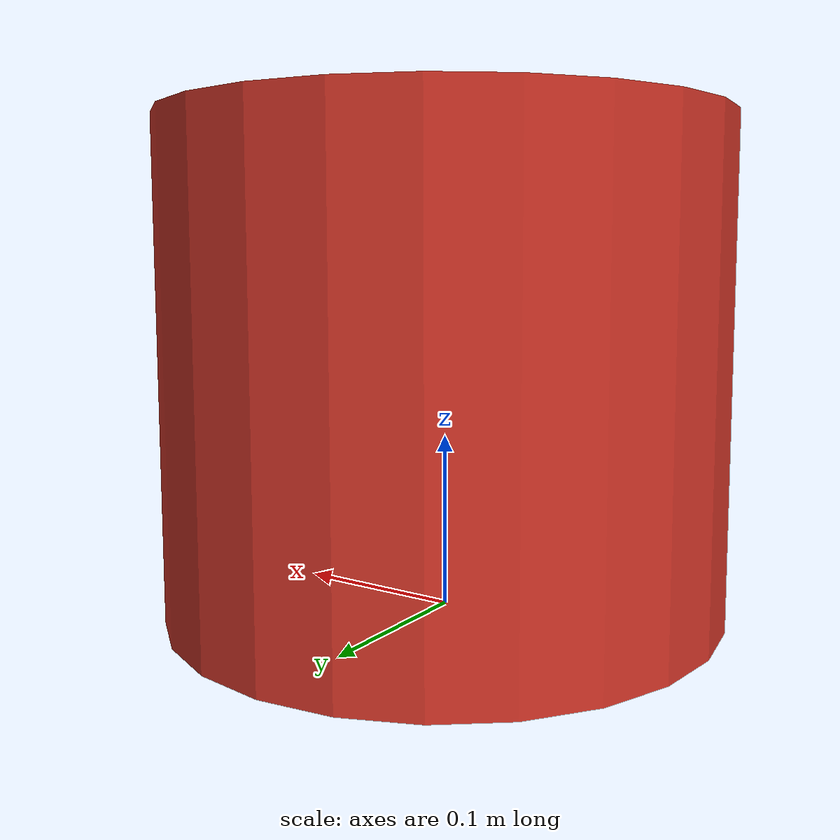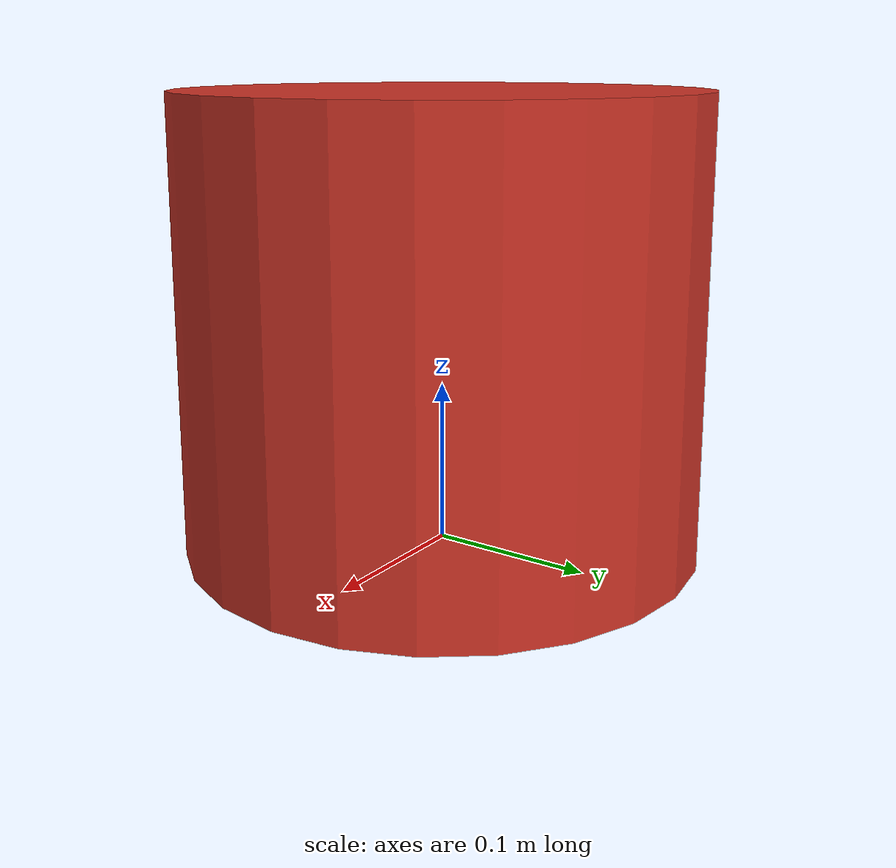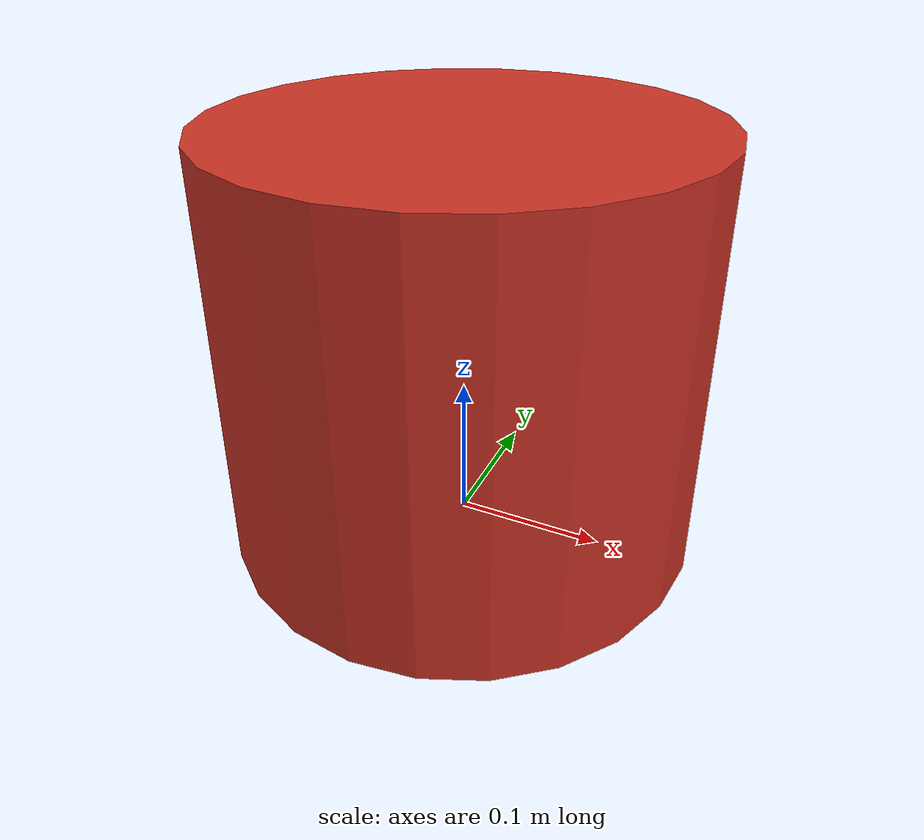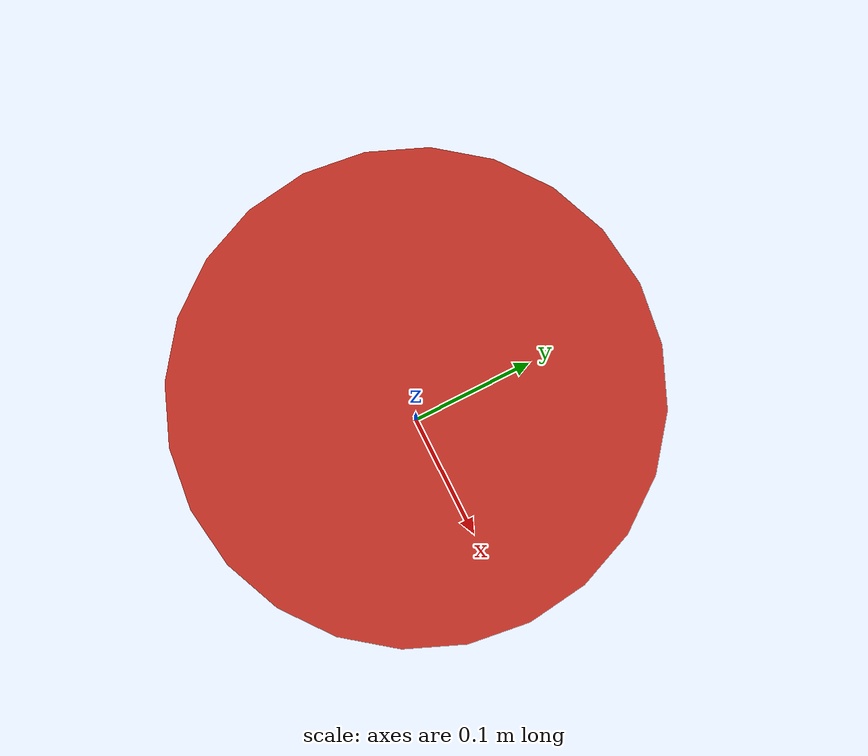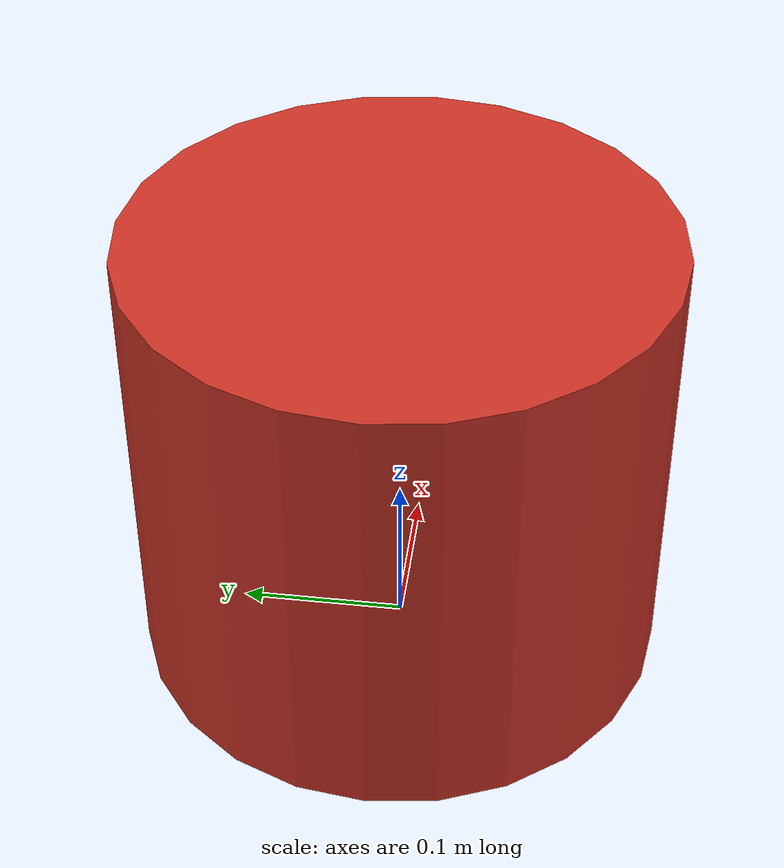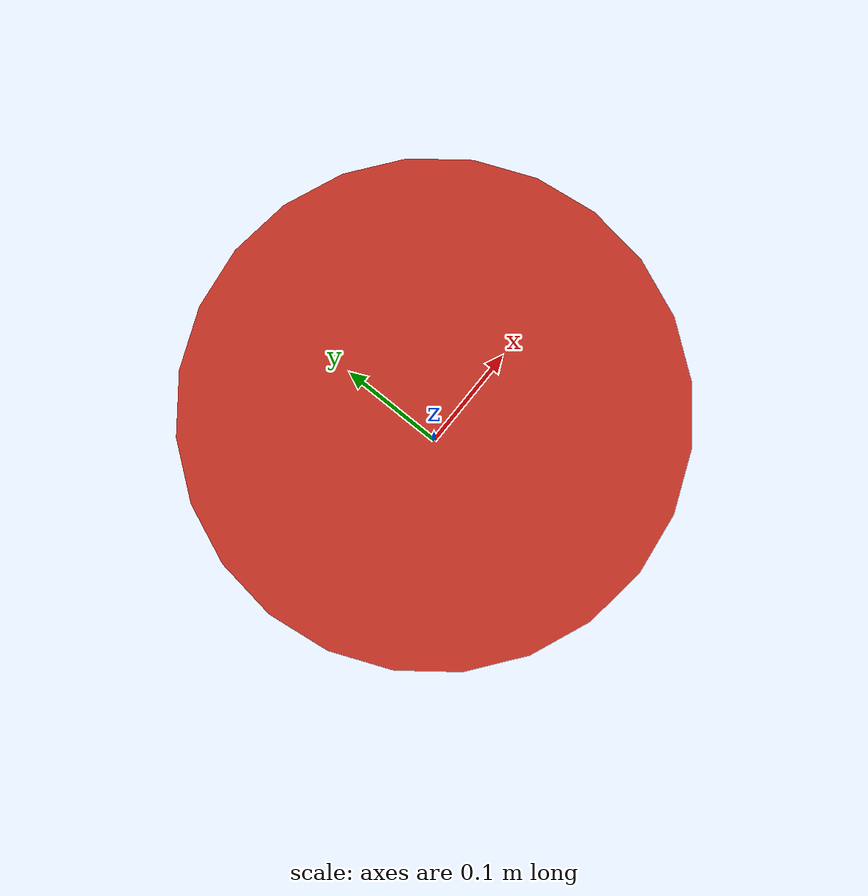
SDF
<?xml version="1.0"?>
<!-- A bucket left in the aisle: the classic "unmapped obstacle" of Scenario C. -->
<sdf version="1.7">
  <model name="bucket">
    <static>true</static>
    <link name="link">
      <visual name="body">
        <pose>0 0 0.14 0 0 0</pose>
        <geometry><cylinder><radius>0.16</radius><length>0.28</length></cylinder></geometry>
        <material><ambient>0.6 0.15 0.12 1</ambient><diffuse>0.8 0.2 0.15 1</diffuse></material>
      </visual>
      <collision name="collision">
        <pose>0 0 0.14 0 0 0</pose>
        <geometry><cylinder><radius>0.16</radius><length>0.28</length></cylinder></geometry>
      </collision>
    </link>
  </model>
</sdf>
